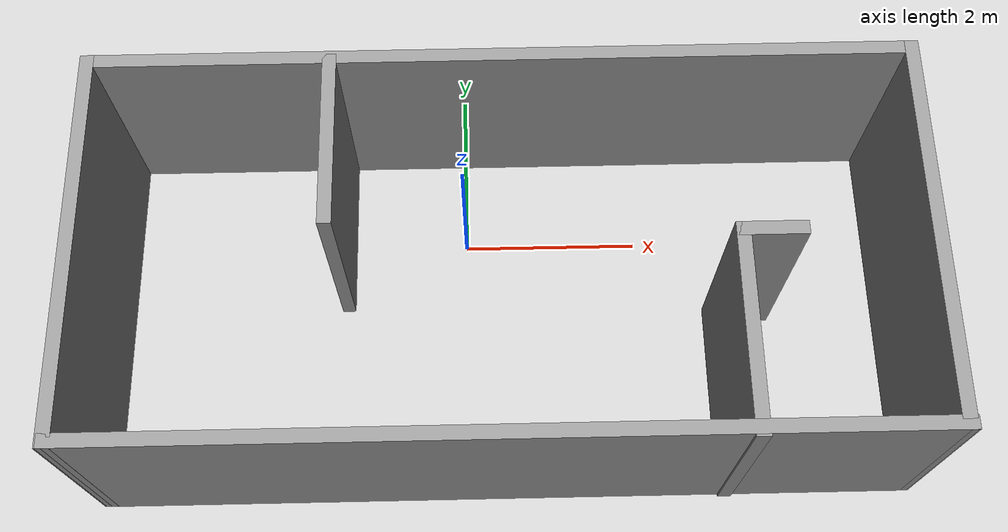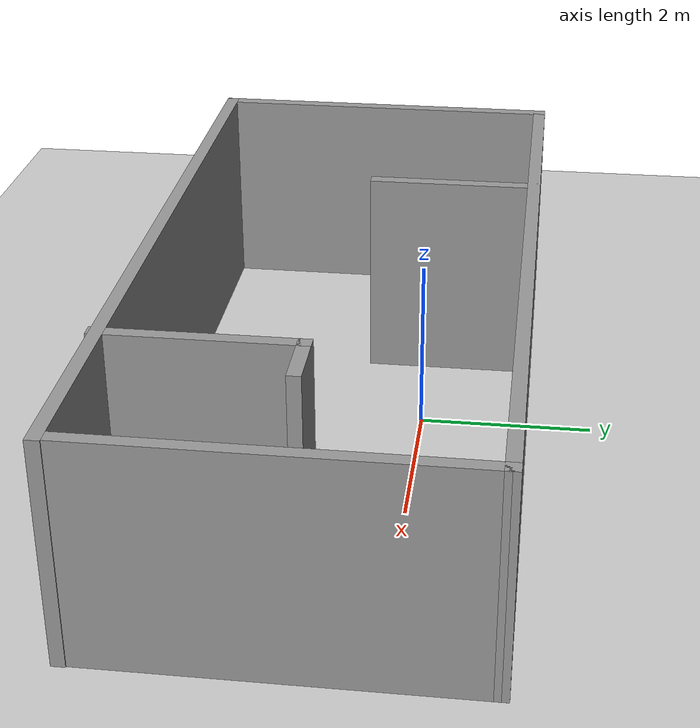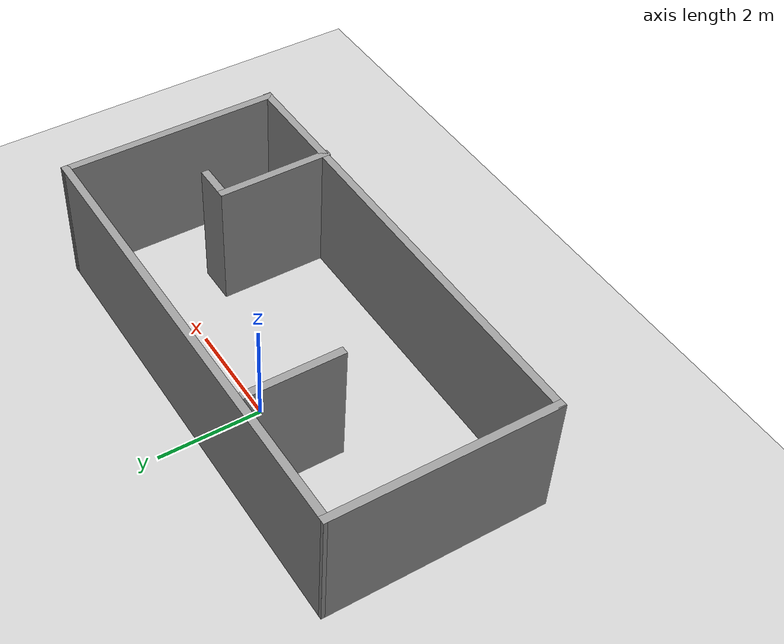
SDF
<sdf version="1.7">
 <world name="default">
  <light name="sun" type="directional">
   <pose>0 0 10 0 -0 0</pose>
   <diffuse>0.8 0.8 0.8 1</diffuse>
   <specular>0.2 0.2 0.2 1</specular>
   <attenuation>
    <range>1000</range>
    <constant>0.9</constant>
    <linear>0.01</linear>
    <quadratic>0.001</quadratic>
   </attenuation>
   <direction>-0.5 0.1 -0.9</direction>
   <spot><inner_angle>0</inner_angle><outer_angle>0</outer_angle><falloff>0</falloff></spot>
  </light>
  <model name="ground_plane">
   <static>1</static>
   <link name="link">
    <collision name="collision">
     <geometry><plane><normal>0 0 1</normal><size>100 100</size></plane></geometry>
     <surface>
      <contact><collide_bitmask>65535</collide_bitmask></contact>
      <friction><ode><mu>100</mu><mu2>50</mu2></ode></friction>
     </surface>
    </collision>
    <visual name="visual">
     <cast_shadows>0</cast_shadows>
     <geometry><plane><normal>0 0 1</normal><size>100 100</size></plane></geometry>
     <material>
      <script><uri>file://media/materials/scripts/gazebo.material</uri><name>Gazebo/Grey</name></script>
     </material>
    </visual>
   </link>
  </model>
  <gravity>0 0 -9.8</gravity>
  <magnetic_field>6e-06 2.3e-05 -4.2e-05</magnetic_field>
  <atmosphere type="adiabatic"/>
  <physics type="ode">
   <max_step_size>0.001</max_step_size>
   <real_time_factor>1</real_time_factor>
   <real_time_update_rate>1000</real_time_update_rate>
  </physics>
  <scene><ambient>0.4 0.4 0.4 1</ambient><background>0.7 0.7 0.7 1</background><shadows>1</shadows></scene>
  <audio><device>default</device></audio>
  <spherical_coordinates>
   <surface_model>EARTH_WGS84</surface_model>
   <latitude_deg>0</latitude_deg>
   <longitude_deg>0</longitude_deg>
   <elevation>0</elevation>
   <heading_deg>0</heading_deg>
  </spherical_coordinates>
  <model name="maailm_vaike.world">
   <pose>0.417888 -0.918481 0 0 -0 0</pose>
   <link name="Wall_1">
    <collision name="Wall_1_Collision">
     <geometry><box><size>9 0.15 2.5</size></box></geometry>
     <pose>0 0 1.25 0 -0 0</pose>
    </collision>
    <visual name="Wall_1_Visual">
     <pose>0 0 1.25 0 -0 0</pose>
     <geometry><box><size>9 0.15 2.5</size></box></geometry>
     <material>
      <script><uri>file://media/materials/scripts/gazebo.material</uri><name>Gazebo/Grey</name></script>
      <ambient>1 1 1 1</ambient>
     </material>
     <meta><layer>0</layer></meta>
    </visual>
    <pose>0.006612 -2.07302 0 0 -0 3.14159</pose>
   </link>
   <link name="Wall_10">
    <collision name="Wall_10_Collision">
     <geometry><box><size>2.25 0.15 2.5</size></box></geometry>
     <pose>0 0 1.25 0 -0 0</pose>
    </collision>
    <visual name="Wall_10_Visual">
     <pose>0 0 1.25 0 -0 0</pose>
     <geometry><box><size>2.25 0.15 2.5</size></box></geometry>
     <material>
      <script><uri>file://media/materials/scripts/gazebo.material</uri><name>Gazebo/Grey</name></script>
      <ambient>1 1 1 1</ambient>
     </material>
     <meta><layer>0</layer></meta>
    </visual>
    <pose>2.43252 -1.04972 0 0 -0 1.5708</pose>
   </link>
   <link name="Wall_11">
    <collision name="Wall_11_Collision">
     <geometry><box><size>0.75 0.15 2.5</size></box></geometry>
     <pose>0 0 1.25 0 -0 0</pose>
    </collision>
    <visual name="Wall_11_Visual">
     <pose>0 0 1.25 0 -0 0</pose>
     <geometry><box><size>0.75 0.15 2.5</size></box></geometry>
     <material>
      <script><uri>file://media/materials/scripts/gazebo.material</uri><name>Gazebo/Grey</name></script>
      <ambient>1 1 1 1</ambient>
     </material>
     <meta><layer>0</layer></meta>
    </visual>
    <pose>2.73252 0.000282 0 0 -0 0</pose>
   </link>
   <link name="Wall_3">
    <collision name="Wall_3_Collision">
     <geometry><box><size>4.32252 0.15 2.5</size></box></geometry>
     <pose>0 0 1.25 0 -0 0</pose>
    </collision>
    <visual name="Wall_3_Visual">
     <pose>0 0 1.25 0 -0 0</pose>
     <geometry><box><size>4.32252 0.15 2.5</size></box></geometry>
     <material>
      <script><uri>file://media/materials/scripts/gazebo.material</uri><name>Gazebo/Grey</name></script>
      <ambient>1 1 1 1</ambient>
     </material>
     <meta><layer>0</layer></meta>
    </visual>
    <pose>-4.425 0.013231 0 0 -0 1.56763</pose>
   </link>
   <link name="Wall_5">
    <collision name="Wall_5_Collision">
     <geometry><box><size>9 0.15 2.5</size></box></geometry>
     <pose>0 0 1.25 0 -0 0</pose>
    </collision>
    <visual name="Wall_5_Visual">
     <pose>0 0 1.25 0 -0 0</pose>
     <geometry><box><size>9 0.15 2.5</size></box></geometry>
     <material>
      <script><uri>file://media/materials/scripts/gazebo.material</uri><name>Gazebo/Grey</name></script>
      <ambient>1 1 1 1</ambient>
     </material>
     <meta><layer>0</layer></meta>
    </visual>
    <pose>0.006612 2.09948 0 0 -0 0</pose>
   </link>
   <link name="Wall_6">
    <collision name="Wall_6_Collision">
     <geometry><box><size>4.32252 0.15 2.5</size></box></geometry>
     <pose>0 0 1.25 0 -0 0</pose>
    </collision>
    <visual name="Wall_6_Visual">
     <pose>0 0 1.25 0 -0 0</pose>
     <geometry><box><size>4.32252 0.15 2.5</size></box></geometry>
     <material>
      <script><uri>file://media/materials/scripts/gazebo.material</uri><name>Gazebo/Grey</name></script>
      <ambient>1 1 1 1</ambient>
     </material>
     <meta><layer>0</layer></meta>
    </visual>
    <pose>4.425 0.013231 0 0 -0 -1.57397</pose>
   </link>
   <link name="Wall_8">
    <collision name="Wall_8_Collision">
     <geometry><box><size>2 0.15 2.5</size></box></geometry>
     <pose>0 0 1.25 0 -0 0</pose>
    </collision>
    <visual name="Wall_8_Visual">
     <pose>0 0 1.25 0 -0 0</pose>
     <geometry><box><size>2 0.15 2.5</size></box></geometry>
     <material>
      <script><uri>file://media/materials/scripts/gazebo.material</uri><name>Gazebo/Grey</name></script>
      <ambient>1 1 1 1</ambient>
     </material>
     <meta><layer>0</layer></meta>
    </visual>
    <pose>-1.82593 1.14116 0 0 -0 -1.5708</pose>
   </link>
   <static>1</static>
  </model>
 </world>
</sdf>
